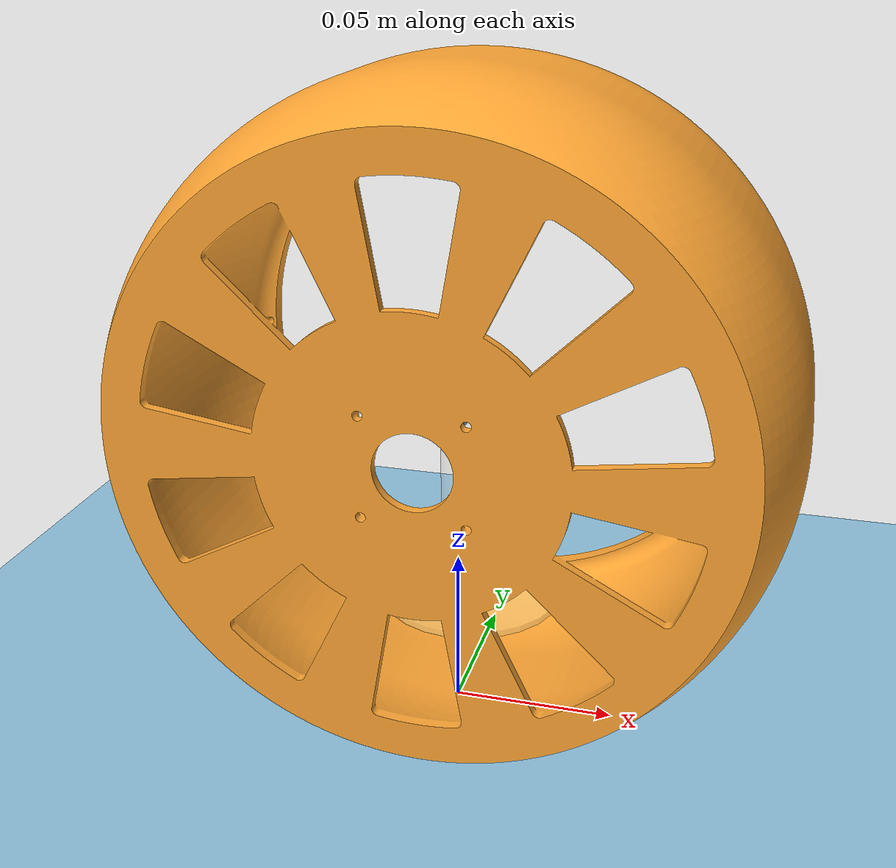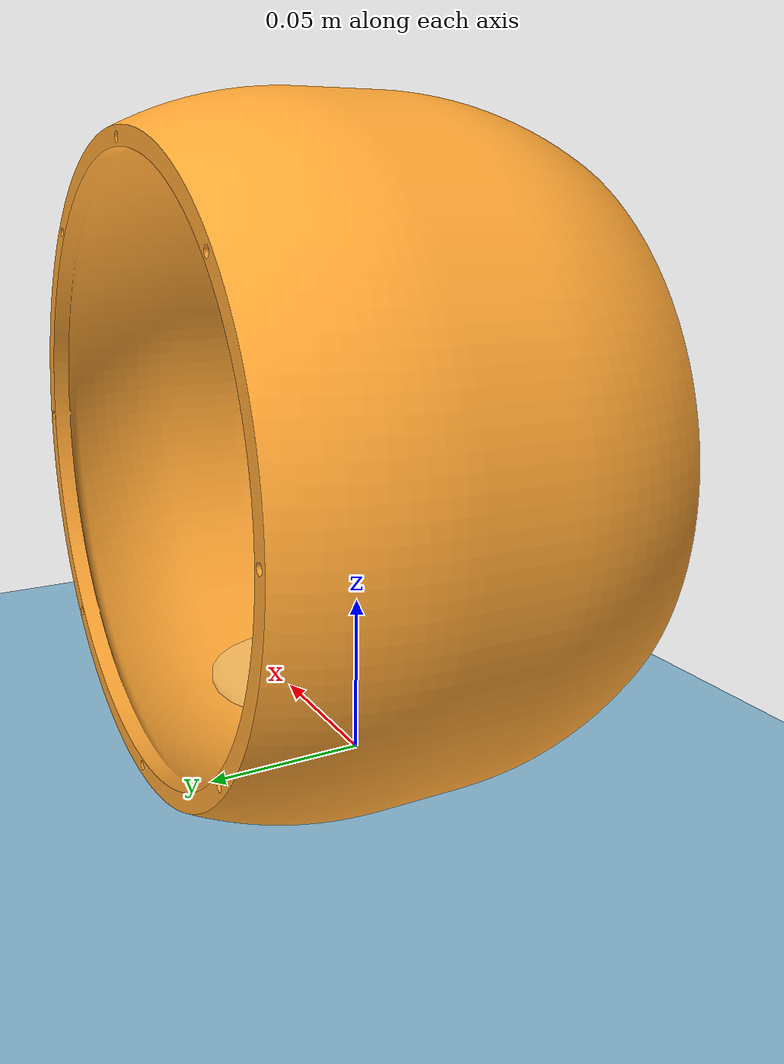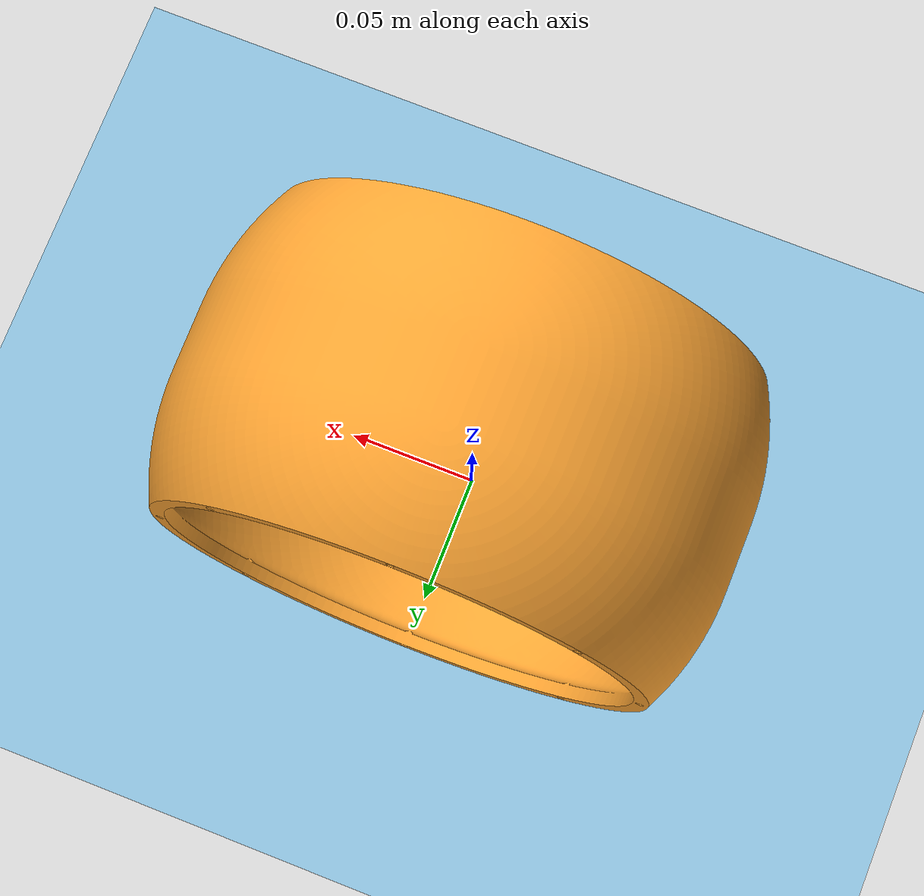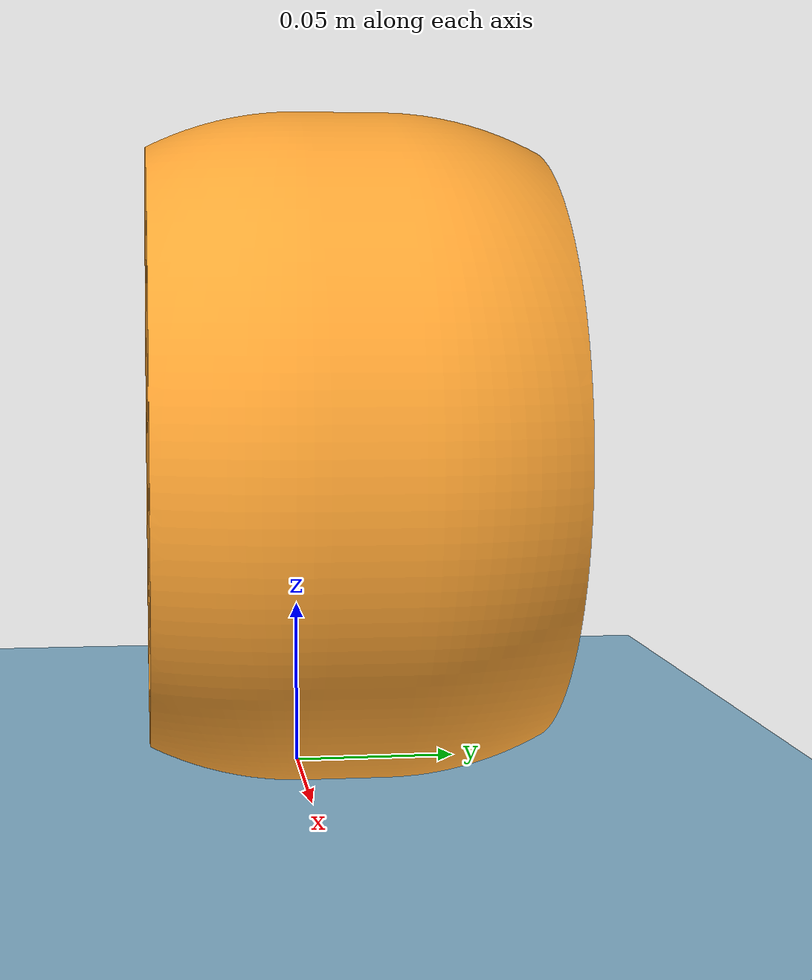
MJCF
<mujoco>
  <option gravity="0 0 -9.81" timestep="0.001"  />
  <visual>
    <global offheight="2160" offwidth="3840"/>
    <quality offsamples="8" shadowsize="0"/>

    <rgba contactforce="1 0 0 1" contactfriction=" 0 0 1 1"/>
    <scale contactwidth="0.01"
        contactheight="0.1"
        forcewidth="0.05"/>

  </visual>

  <asset>
    <texture name="grid" type="2d" builtin="checker"
            rgb1="0.52 0.72 0.85"
            rgb2="0.60 0.80 0.90"
            width="30" height="30" mark="none"/>

    <material name="grid" texture="grid" texrepeat="6 6"
              texuniform="true" reflectance="0.0"/>
    <material name="wall" rgba='.8 .5 .5 1'/>
    <mesh name="hoop_vis_mesh" file="hoop1.stl" scale="0.001 0.001 0.001"/>
  </asset>

<worldbody>
  <light name="light" pos="-.2 0 3" diffuse="1 1 1" specular="0 1 1" ambient="0.2 0.2 0.2" />

  <geom name="ground" type="plane" size="100 5 0.1" material="grid"
        zaxis="0 0 1" friction=".8 0 0"
        solimp="0.9 0.95 0.002 0.5 2" solref="0.002 2"
        contype="1" conaffinity="1"/>

  <camera name="y" pos="0 0 0.05" euler="90 0 0"/>

  <body name="hoop" pos="0 0 0.1" euler="0 0 0">
    <joint name="hoop_joint" type="free" />
    <inertial mass="0.4" pos="0 0 0"   fullinertia="0.0016 0.0011 0.0011 0 0 0"/>

    <!-- Collision proxy (invisible): cylinder; axis along +x via euler="90 0 0" -->
    <geom name="hoop_geom_col" type="mesh" mesh="hoop_vis_mesh"
      euler="0 0 0"
      rgba="1.0 0.65 0.2 1"
      contype="1" conaffinity="1"
      solimp="0.9 0.95 0.001 0.5 2" solref="0.02 2"/>
    <site name="IMU" pos="0 0 0" euler="90 0 0"/>

    <!-- Visual mesh (no collision): STL -->

    <body name="pend_body" pos="0 0.017 0">
      <joint name="pend" type="hinge" pos="0 0.0 0" axis="0 1 0" damping = "0.001"/>
      <inertial mass="0.45" pos="0 0 -0.04" fullinertia="0.00066 0.00066 0.00063 0 0 0"/>

      <!-- Pendulum: no collisions -->
      <geom name="pendulum" type="cylinder" pos="0 0 -0.03" size="0.01 0.03"
            rgba="1 1 1 0.3" euler="0 0 0"
            contype="2" conaffinity="0"/>

      <body name="rotor_body" pos="0 0 -0.070">
        <joint name="rotor" type="hinge" pos="0 0 0" axis="0 0 1" damping = ".001"/>
        <inertial mass="0.03" pos="0 0 -0.07" fullinertia="0.000013 0.000013 0.000026 0 0 0"/>

        <!-- Rotor: thin disc; no collisions -->
        <geom name="rotor_mesh" type="cylinder" pos="0 0 0" size="0.03 0.001"
              rgba="1 1 0.8 0.3" euler="0 0 0"
              contype="2" conaffinity="0"/>
      </body>
    </body>
  </body>
</worldbody>

  <sensor>
    <jointpos name="pend_jointpos" joint="pend" />
    <accelerometer name="accelerometer" site="IMU"/>
    <gyro name="gyroscope" site="IMU"/>
  </sensor>
  <actuator>
    <motor name="my_motor" joint="pend" />
    <motor name="twist_rotor" joint="rotor" />
  </actuator>
  <keyframe>
    <!-- qpos layout: [x y z qw qx qy qz | pend | rotor]; qvel: [vx vy vz wx wy wz | pend | rotor] -->
    <key name="k_at_13_822"

         qpos="3.54872 0.623403 0.0564989 0.705534 0.705525 -0.0471854 -0.0472258 48.7514 2221.72"
         qvel="0 0 0 0 0 0 0 0"
         ctrl="0 0"/>
  </keyframe>
</mujoco>
